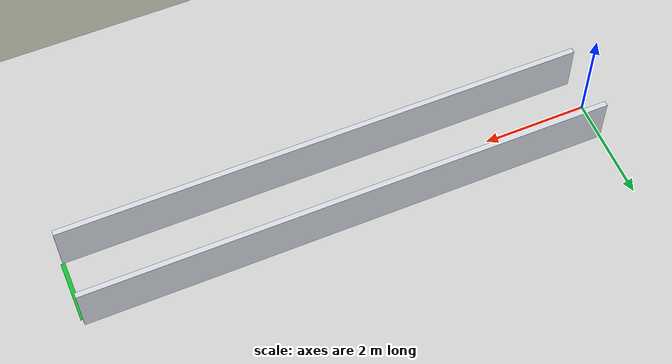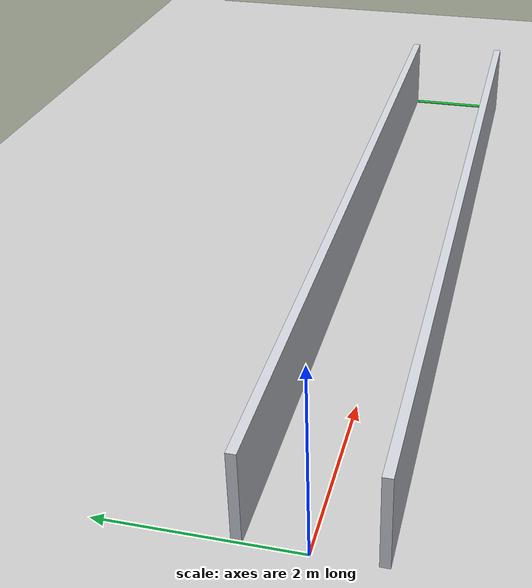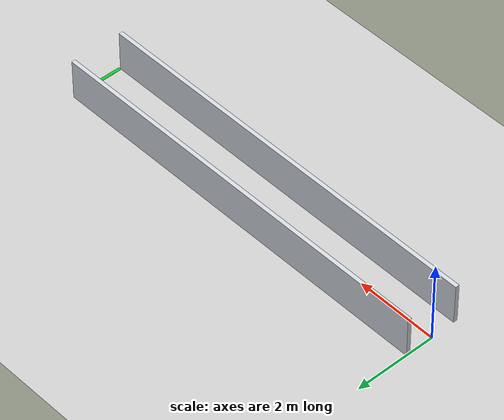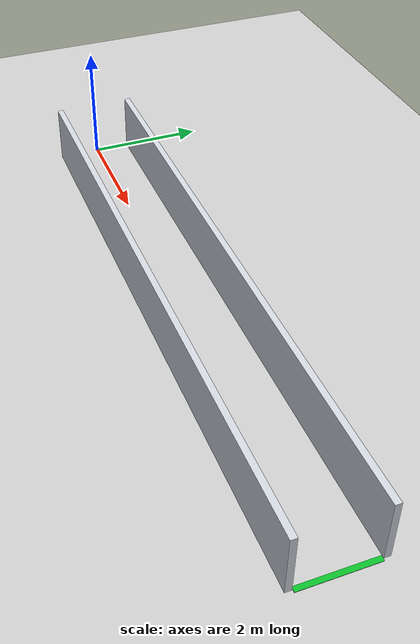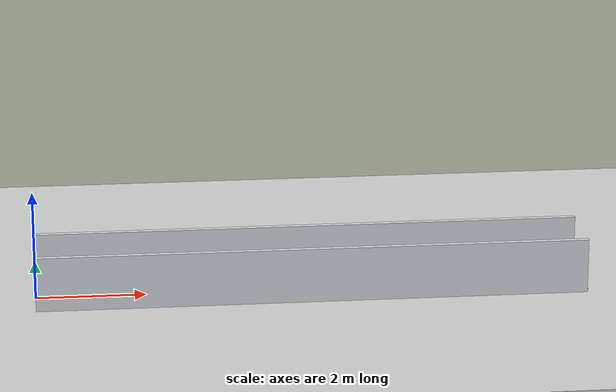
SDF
<?xml version="1.0"?>
<sdf version="1.6">
  <world name="simple_narrow_corridor">
    <!-- ===== 物理引擎 =====
         2 ms 步长 × 500 Hz 的目标更新率约等于实时运行，满足 10 Hz 雷达和 20 Hz 控制。 -->
    <gravity>0 0 -9.81</gravity>
    <physics name="default_physics" type="ode">
      <max_step_size>0.002</max_step_size>
      <real_time_update_rate>500</real_time_update_rate>
    </physics>

    <!-- 只影响可视效果，不影响雷达碰撞射线。 -->
    <scene>
      <ambient>0.55 0.55 0.55 1</ambient>
      <background>0.80 0.85 0.92 1</background>
      <shadows>true</shadows>
    </scene>

    <!-- Gazebo 自带光源和无限地面。 -->
    <include><uri>model://sun</uri></include>
    <include><uri>model://ground_plane</uri></include>

    <!--
      ===== 平行窄道 =====
      两墙中心位于 y=±0.65 m、厚 0.10 m，因此内表面是 ±0.60 m，净宽正好 1.20 m。
      墙长严格为 10.0 m、中心 x=5.0 m，即入口 x=0、出口 x=10。
      小车出生在入口外，车头从入口线进入后到出口线正好对应约 10 m 的墙内行程。
    -->
    <model name="corridor_walls">
      <static>true</static>
      <link name="walls">
        <!-- collision 决定雷达命中和物理碰撞；visual 只决定画面颜色。 -->
        <collision name="left_wall_collision">
          <pose>5.0 0.65 0.50 0 0 0</pose>
          <geometry><box><size>10.0 0.10 1.0</size></box></geometry>
        </collision>
        <visual name="left_wall_visual">
          <pose>5.0 0.65 0.50 0 0 0</pose>
          <geometry><box><size>10.0 0.10 1.0</size></box></geometry>
          <material>
            <ambient>0.78 0.80 0.83 1</ambient>
            <diffuse>0.82 0.84 0.87 1</diffuse>
          </material>
        </visual>
        <collision name="right_wall_collision">
          <pose>5.0 -0.65 0.50 0 0 0</pose>
          <geometry><box><size>10.0 0.10 1.0</size></box></geometry>
        </collision>
        <visual name="right_wall_visual">
          <pose>5.0 -0.65 0.50 0 0 0</pose>
          <geometry><box><size>10.0 0.10 1.0</size></box></geometry>
          <material>
            <ambient>0.78 0.80 0.83 1</ambient>
            <diffuse>0.82 0.84 0.87 1</diffuse>
          </material>
        </visual>
      </link>
    </model>

    <!--
      绿色完成线只是视觉标记，不参与碰撞，也不触发停车。
      真正的 SUCCESS 由 Python 把 /odom 起点位移投影到起始航向后与目标距离比较。
    -->
    <model name="finish_line">
      <static>true</static>
      <pose>10.0 0 0.006 0 0 0</pose>
      <link name="finish_marker">
        <visual name="marker_visual">
          <geometry><box><size>0.08 1.18 0.01</size></box></geometry>
          <material>
            <ambient>0.05 0.65 0.15 1</ambient>
            <diffuse>0.05 0.75 0.18 1</diffuse>
            <emissive>0.02 0.12 0.03 1</emissive>
          </material>
        </visual>
      </link>
    </model>

    <!-- gzclient 初始相机，从右后上方俯视整个通道；可在 GUI 中自由拖动。 -->
    <gui fullscreen="0">
      <camera name="overview">
        <pose>4.75 -7.0 7.0 0 0.68 1.57</pose>
        <view_controller>orbit</view_controller>
      </camera>
    </gui>
  </world>
</sdf>
